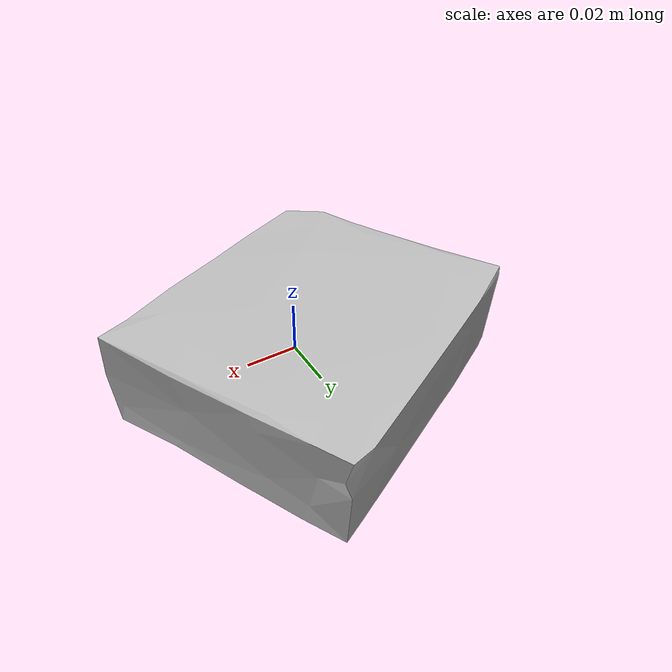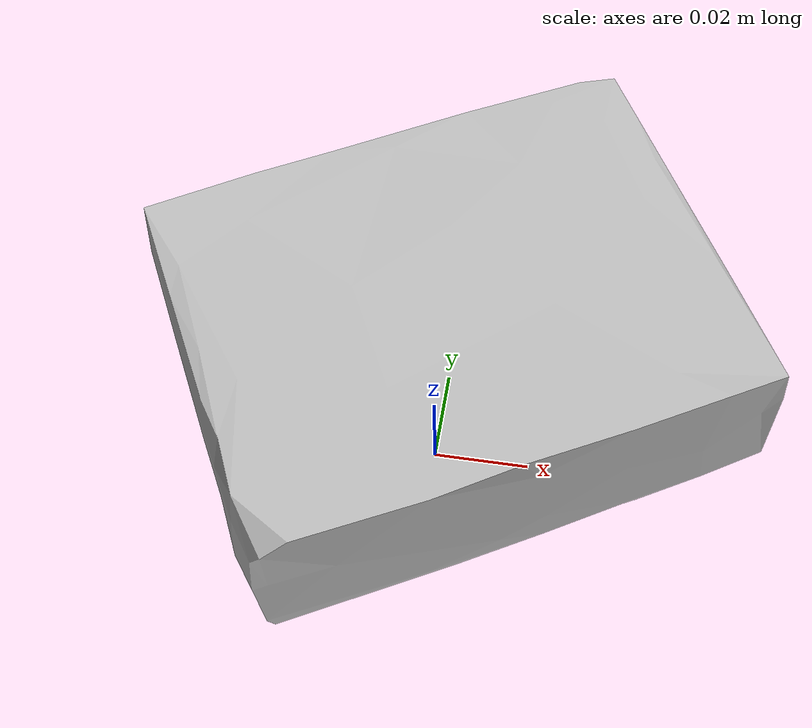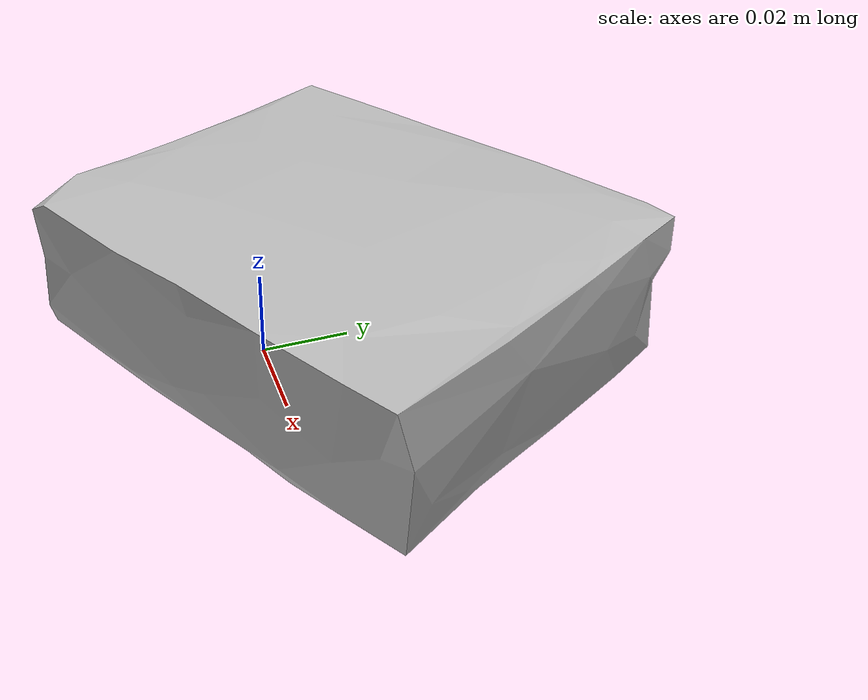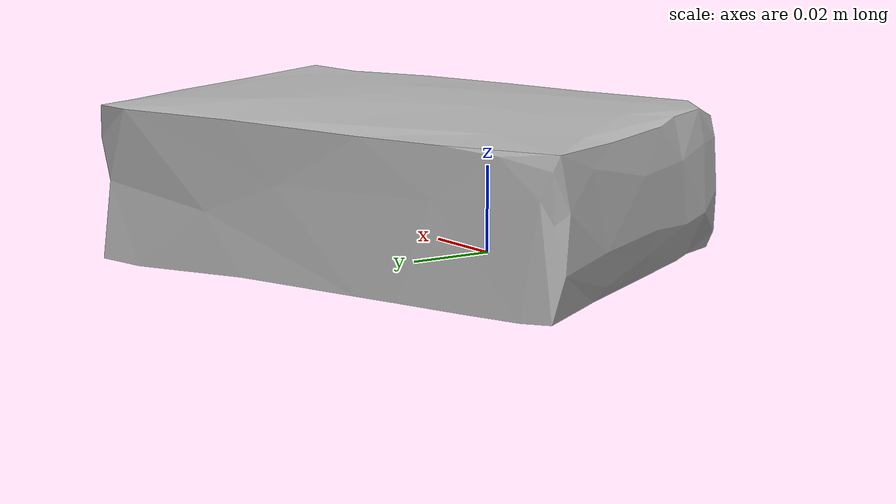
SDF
<?xml version='1.0'?>
<sdf version="1.4">
  <model name="008_pudding_box">
    <static>false</static>
    <link name="link">
      <inertial>
        <pose>0.001362802274544295 0.018991039213957527 0.01847268668909133 -2.7968408756146945 -1.5416105519065315 -2.99059509587566</pose>
        <mass>0.03521197623725612</mass>
        <inertia>
          <ixx>5.771639652110342e-05</ixx>
          <ixy>4.761972489121296e-21</ixy>
          <ixz>-7.817169459763575e-22</ixz>
          <iyy>3.903126945346268e-05</iyy>
          <iyz>-1.1168536124264665e-21</iyz>
          <izz>2.6238339725231364e-05</izz>
        </inertia>
      </inertial>
      <collision name="collision">
        <geometry>
          <mesh>
            <!-- Use a downsampled mesh for collisions -->
            <uri>model:///008_pudding_box/008_pudding_box_250_collision.stl</uri>
	        </mesh>
        </geometry>
        <surface>
      </surface>
      </collision>
      <visual name="visual">
        <geometry>
          <mesh>
            <uri>model:///008_pudding_box/textured.obj</uri>
	        </mesh>
        </geometry>
        <material>
          <script>
            <uri>model:///008_pudding_box/008_pudding_box.material</uri>
            <name>008_pudding_box</name>
          </script>
        </material>
      </visual>
    </link>
  </model>
</sdf>
